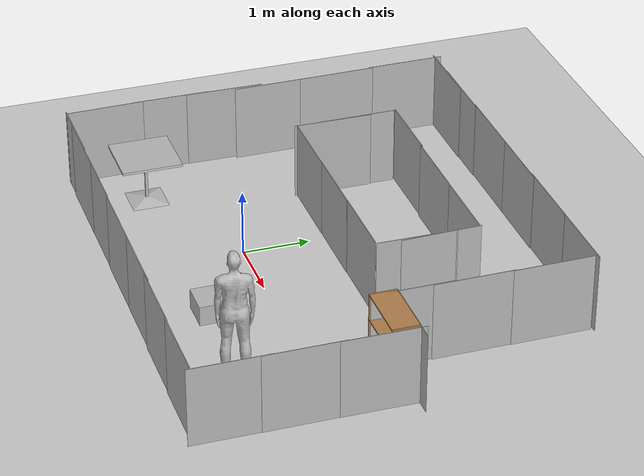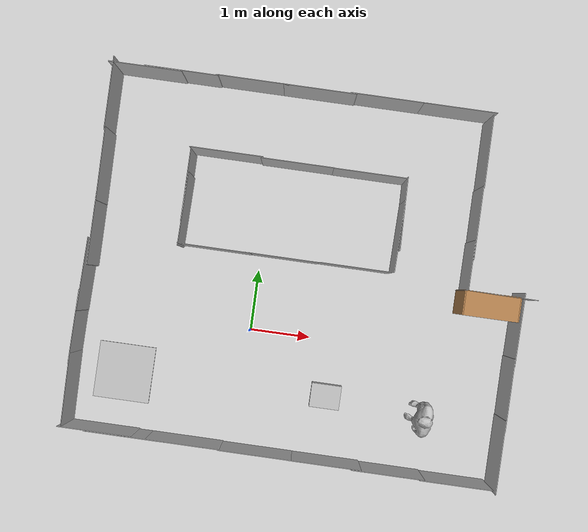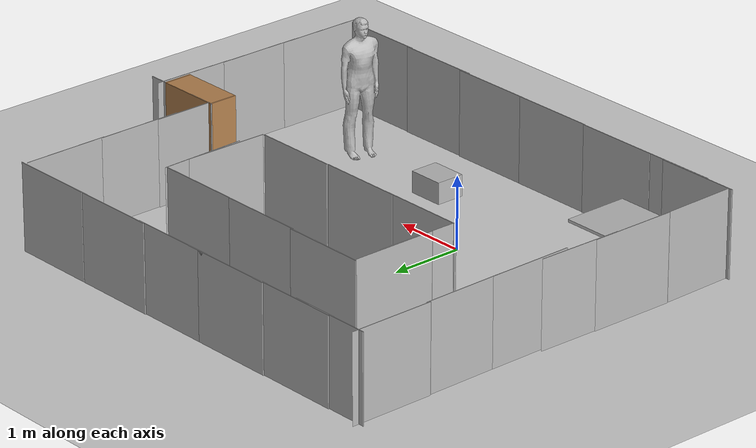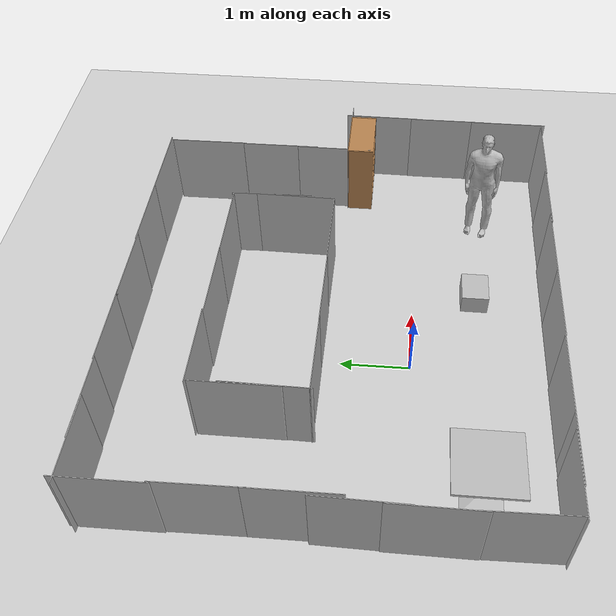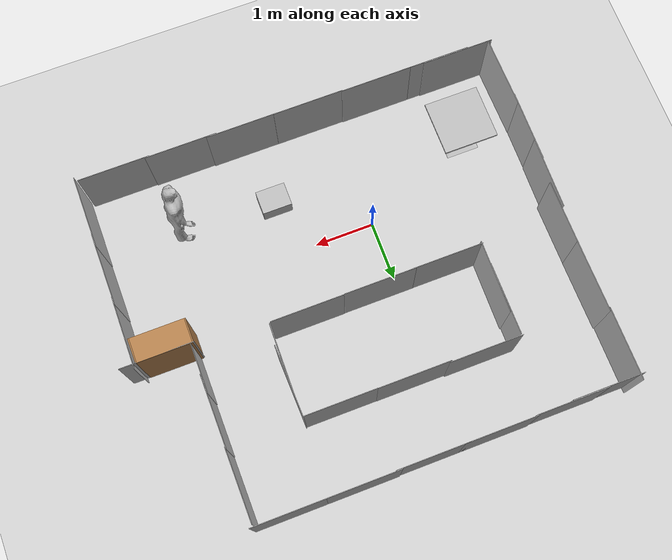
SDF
<sdf version="1.7">
 <world name="default">
  <light name="sun" type="directional">
   <pose>0 0 10 0 -0 0</pose>
   <diffuse>0.8 0.8 0.8 1</diffuse>
   <specular>0.2 0.2 0.2 1</specular>
   <attenuation>
    <range>1000</range>
    <constant>0.9</constant>
    <linear>0.01</linear>
    <quadratic>0.001</quadratic>
   </attenuation>
   <direction>-0.5 0.1 -0.9</direction>
   <spot><inner_angle>0</inner_angle><outer_angle>0</outer_angle><falloff>0</falloff></spot>
  </light>
  <model name="ground_plane">
   <static>1</static>
   <link name="link">
    <collision name="collision">
     <geometry><plane><normal>0 0 1</normal><size>100 100</size></plane></geometry>
     <surface>
      <contact><collide_bitmask>65535</collide_bitmask></contact>
      <friction><ode><mu>100</mu><mu2>50</mu2></ode></friction>
     </surface>
    </collision>
    <visual name="visual">
     <cast_shadows>0</cast_shadows>
     <geometry><plane><normal>0 0 1</normal><size>100 100</size></plane></geometry>
     <material>
      <script><uri>file://media/materials/scripts/gazebo.material</uri><name>Gazebo/Grey</name></script>
     </material>
    </visual>
   </link>
  </model>
  <gravity>0 0 -9.8</gravity>
  <magnetic_field>6e-06 2.3e-05 -4.2e-05</magnetic_field>
  <atmosphere type="adiabatic"/>
  <physics type="ode">
   <max_step_size>0.001</max_step_size>
   <real_time_factor>1</real_time_factor>
   <real_time_update_rate>1000</real_time_update_rate>
  </physics>
  <scene><ambient>0.4 0.4 0.4 1</ambient><background>0.7 0.7 0.7 1</background><shadows>1</shadows></scene>
  <spherical_coordinates>
   <surface_model>EARTH_WGS84</surface_model>
   <latitude_deg>0</latitude_deg>
   <longitude_deg>0</longitude_deg>
   <elevation>0</elevation>
   <heading_deg>0</heading_deg>
  </spherical_coordinates>
  <model name="nist_maze_wall_120">
   <static>1</static>
   <link name="nist_maze_wall_120_link">
    <collision name="collision">
     <geometry>
      <mesh><uri>model://nist_maze_wall_120/meshes/nist_maze_wall_120.dae</uri><scale>1 1 1</scale></mesh>
     </geometry>
    </collision>
    <visual name="visual">
     <geometry>
      <mesh><uri>model://nist_maze_wall_120/meshes/nist_maze_wall_120.dae</uri><scale>1 1 1</scale></mesh>
     </geometry>
    </visual>
   </link>
   <pose>1.57091 0.659399 0 0 -0 0</pose>
  </model>
  <model name="nist_maze_wall_120_clone">
   <static>1</static>
   <link name="nist_maze_wall_120_link">
    <collision name="collision">
     <geometry>
      <mesh><uri>model://nist_maze_wall_120/meshes/nist_maze_wall_120.dae</uri><scale>1 1 1</scale></mesh>
     </geometry>
    </collision>
    <visual name="visual">
     <geometry>
      <mesh><uri>model://nist_maze_wall_120/meshes/nist_maze_wall_120.dae</uri><scale>1 1 1</scale></mesh>
     </geometry>
    </visual>
   </link>
   <pose>0.368968 0.6537 0 0 -0 0</pose>
  </model>
  <model name="nist_maze_wall_120_clone_0">
   <static>1</static>
   <link name="nist_maze_wall_120_link">
    <collision name="collision">
     <geometry>
      <mesh><uri>model://nist_maze_wall_120/meshes/nist_maze_wall_120.dae</uri><scale>1 1 1</scale></mesh>
     </geometry>
    </collision>
    <visual name="visual">
     <geometry>
      <mesh><uri>model://nist_maze_wall_120/meshes/nist_maze_wall_120.dae</uri><scale>1 1 1</scale></mesh>
     </geometry>
    </visual>
   </link>
   <pose>-0.736289 0.650786 0 0 -0 0</pose>
  </model>
  <model name="nist_maze_wall_120_clone_1">
   <static>1</static>
   <link name="nist_maze_wall_120_link">
    <collision name="collision">
     <geometry>
      <mesh><uri>model://nist_maze_wall_120/meshes/nist_maze_wall_120.dae</uri><scale>1 1 1</scale></mesh>
     </geometry>
    </collision>
    <visual name="visual">
     <geometry>
      <mesh><uri>model://nist_maze_wall_120/meshes/nist_maze_wall_120.dae</uri><scale>1 1 1</scale></mesh>
     </geometry>
    </visual>
   </link>
   <pose>-0.748767 2.20811 0 0 -0 0</pose>
  </model>
  <model name="nist_maze_wall_120_clone_2">
   <static>1</static>
   <link name="nist_maze_wall_120_link">
    <collision name="collision">
     <geometry>
      <mesh><uri>model://nist_maze_wall_120/meshes/nist_maze_wall_120.dae</uri><scale>1 1 1</scale></mesh>
     </geometry>
    </collision>
    <visual name="visual">
     <geometry>
      <mesh><uri>model://nist_maze_wall_120/meshes/nist_maze_wall_120.dae</uri><scale>1 1 1</scale></mesh>
     </geometry>
    </visual>
   </link>
   <pose>0.411382 2.18987 0 0 -0 0</pose>
  </model>
  <model name="nist_maze_wall_120_clone_3">
   <static>1</static>
   <link name="nist_maze_wall_120_link">
    <collision name="collision">
     <geometry>
      <mesh><uri>model://nist_maze_wall_120/meshes/nist_maze_wall_120.dae</uri><scale>1 1 1</scale></mesh>
     </geometry>
    </collision>
    <visual name="visual">
     <geometry>
      <mesh><uri>model://nist_maze_wall_120/meshes/nist_maze_wall_120.dae</uri><scale>1 1 1</scale></mesh>
     </geometry>
    </visual>
   </link>
   <pose>1.59556 2.18642 0 0 -0 0</pose>
  </model>
  <model name="nist_maze_wall_120_clone_4">
   <static>1</static>
   <link name="nist_maze_wall_120_link">
    <collision name="collision">
     <geometry>
      <mesh><uri>model://nist_maze_wall_120/meshes/nist_maze_wall_120.dae</uri><scale>1 1 1</scale></mesh>
     </geometry>
    </collision>
    <visual name="visual">
     <geometry>
      <mesh><uri>model://nist_maze_wall_120/meshes/nist_maze_wall_120.dae</uri><scale>1 1 1</scale></mesh>
     </geometry>
    </visual>
   </link>
   <pose>-0.707069 1.80124 0 0 -0 1.55684</pose>
  </model>
  <model name="nist_maze_wall_120_clone_5">
   <static>1</static>
   <link name="nist_maze_wall_120_link">
    <collision name="collision">
     <geometry>
      <mesh><uri>model://nist_maze_wall_120/meshes/nist_maze_wall_120.dae</uri><scale>1 1 1</scale></mesh>
     </geometry>
    </collision>
    <visual name="visual">
     <geometry>
      <mesh><uri>model://nist_maze_wall_120/meshes/nist_maze_wall_120.dae</uri><scale>1 1 1</scale></mesh>
     </geometry>
    </visual>
   </link>
   <pose>-0.716563 2.18729 0 0 -0 1.57112</pose>
  </model>
  <model name="nist_maze_wall_120_clone_6">
   <static>1</static>
   <link name="nist_maze_wall_120_link">
    <collision name="collision">
     <geometry>
      <mesh><uri>model://nist_maze_wall_120/meshes/nist_maze_wall_120.dae</uri><scale>1 1 1</scale></mesh>
     </geometry>
    </collision>
    <visual name="visual">
     <geometry>
      <mesh><uri>model://nist_maze_wall_120/meshes/nist_maze_wall_120.dae</uri><scale>1 1 1</scale></mesh>
     </geometry>
    </visual>
   </link>
   <pose>1.61206 2.19786 0 0 0 -1.54428</pose>
  </model>
  <model name="nist_maze_wall_120_clone_7">
   <static>1</static>
   <link name="nist_maze_wall_120_link">
    <collision name="collision">
     <geometry>
      <mesh><uri>model://nist_maze_wall_120/meshes/nist_maze_wall_120.dae</uri><scale>1 1 1</scale></mesh>
     </geometry>
    </collision>
    <visual name="visual">
     <geometry>
      <mesh><uri>model://nist_maze_wall_120/meshes/nist_maze_wall_120.dae</uri><scale>1 1 1</scale></mesh>
     </geometry>
    </visual>
   </link>
   <pose>1.59694 1.87331 0 0 0 -1.58664</pose>
  </model>
  <model name="nist_maze_wall_120_clone_8">
   <static>1</static>
   <link name="nist_maze_wall_120_link">
    <collision name="collision">
     <geometry>
      <mesh><uri>model://nist_maze_wall_120/meshes/nist_maze_wall_120.dae</uri><scale>1 1 1</scale></mesh>
     </geometry>
    </collision>
    <visual name="visual">
     <geometry>
      <mesh><uri>model://nist_maze_wall_120/meshes/nist_maze_wall_120.dae</uri><scale>1 1 1</scale></mesh>
     </geometry>
    </visual>
   </link>
   <pose>-0.798198 -2.53233 0 0 -0 0</pose>
  </model>
  <model name="nist_maze_wall_120_clone_9">
   <static>1</static>
   <link name="nist_maze_wall_120_link">
    <collision name="collision">
     <geometry>
      <mesh><uri>model://nist_maze_wall_120/meshes/nist_maze_wall_120.dae</uri><scale>1 1 1</scale></mesh>
     </geometry>
    </collision>
    <visual name="visual">
     <geometry>
      <mesh><uri>model://nist_maze_wall_120/meshes/nist_maze_wall_120.dae</uri><scale>1 1 1</scale></mesh>
     </geometry>
    </visual>
   </link>
   <pose>0.376349 -2.54177 0 0 -0 0</pose>
  </model>
  <model name="nist_maze_wall_120_clone_10">
   <static>1</static>
   <link name="nist_maze_wall_120_link">
    <collision name="collision">
     <geometry>
      <mesh><uri>model://nist_maze_wall_120/meshes/nist_maze_wall_120.dae</uri><scale>1 1 1</scale></mesh>
     </geometry>
    </collision>
    <visual name="visual">
     <geometry>
      <mesh><uri>model://nist_maze_wall_120/meshes/nist_maze_wall_120.dae</uri><scale>1 1 1</scale></mesh>
     </geometry>
    </visual>
   </link>
   <pose>1.50652 -2.5442 0 0 -0 0</pose>
  </model>
  <model name="nist_maze_wall_120_clone_11">
   <static>1</static>
   <link name="nist_maze_wall_120_link">
    <collision name="collision">
     <geometry>
      <mesh><uri>model://nist_maze_wall_120/meshes/nist_maze_wall_120.dae</uri><scale>1 1 1</scale></mesh>
     </geometry>
    </collision>
    <visual name="visual">
     <geometry>
      <mesh><uri>model://nist_maze_wall_120/meshes/nist_maze_wall_120.dae</uri><scale>1 1 1</scale></mesh>
     </geometry>
    </visual>
   </link>
   <pose>2.53344 -2.55853 0 0 -0 0</pose>
  </model>
  <model name="nist_maze_wall_120_clone_12">
   <static>1</static>
   <link name="nist_maze_wall_120_link">
    <collision name="collision">
     <geometry>
      <mesh><uri>model://nist_maze_wall_120/meshes/nist_maze_wall_120.dae</uri><scale>1 1 1</scale></mesh>
     </geometry>
    </collision>
    <visual name="visual">
     <geometry>
      <mesh><uri>model://nist_maze_wall_120/meshes/nist_maze_wall_120.dae</uri><scale>1 1 1</scale></mesh>
     </geometry>
    </visual>
   </link>
   <pose>3.64107 -2.56976 0 0 -0 0</pose>
  </model>
  <model name="nist_maze_wall_120_clone_13">
   <static>1</static>
   <link name="nist_maze_wall_120_link">
    <collision name="collision">
     <geometry>
      <mesh><uri>model://nist_maze_wall_120/meshes/nist_maze_wall_120.dae</uri><scale>1 1 1</scale></mesh>
     </geometry>
    </collision>
    <visual name="visual">
     <geometry>
      <mesh><uri>model://nist_maze_wall_120/meshes/nist_maze_wall_120.dae</uri><scale>1 1 1</scale></mesh>
     </geometry>
    </visual>
   </link>
   <pose>2.88461 3.42391 0 0 -0 0</pose>
  </model>
  <model name="nist_maze_wall_120_clone_14">
   <static>1</static>
   <link name="nist_maze_wall_120_link">
    <collision name="collision">
     <geometry>
      <mesh><uri>model://nist_maze_wall_120/meshes/nist_maze_wall_120.dae</uri><scale>1 1 1</scale></mesh>
     </geometry>
    </collision>
    <visual name="visual">
     <geometry>
      <mesh><uri>model://nist_maze_wall_120/meshes/nist_maze_wall_120.dae</uri><scale>1 1 1</scale></mesh>
     </geometry>
    </visual>
   </link>
   <pose>1.69314 3.42391 0 0 -0 0</pose>
  </model>
  <model name="nist_maze_wall_120_clone_15">
   <static>1</static>
   <link name="nist_maze_wall_120_link">
    <collision name="collision">
     <geometry>
      <mesh><uri>model://nist_maze_wall_120/meshes/nist_maze_wall_120.dae</uri><scale>1 1 1</scale></mesh>
     </geometry>
    </collision>
    <visual name="visual">
     <geometry>
      <mesh><uri>model://nist_maze_wall_120/meshes/nist_maze_wall_120.dae</uri><scale>1 1 1</scale></mesh>
     </geometry>
    </visual>
   </link>
   <pose>0.602007 3.41137 0 0 -0 0</pose>
  </model>
  <model name="nist_maze_wall_120_clone_16">
   <static>1</static>
   <link name="nist_maze_wall_120_link">
    <collision name="collision">
     <geometry>
      <mesh><uri>model://nist_maze_wall_120/meshes/nist_maze_wall_120.dae</uri><scale>1 1 1</scale></mesh>
     </geometry>
    </collision>
    <visual name="visual">
     <geometry>
      <mesh><uri>model://nist_maze_wall_120/meshes/nist_maze_wall_120.dae</uri><scale>1 1 1</scale></mesh>
     </geometry>
    </visual>
   </link>
   <pose>-0.489129 3.41137 0 0 -0 0</pose>
  </model>
  <model name="nist_maze_wall_120_clone_17">
   <static>1</static>
   <link name="nist_maze_wall_120_link">
    <collision name="collision">
     <geometry>
      <mesh><uri>model://nist_maze_wall_120/meshes/nist_maze_wall_120.dae</uri><scale>1 1 1</scale></mesh>
     </geometry>
    </collision>
    <visual name="visual">
     <geometry>
      <mesh><uri>model://nist_maze_wall_120/meshes/nist_maze_wall_120.dae</uri><scale>1 1 1</scale></mesh>
     </geometry>
    </visual>
   </link>
   <pose>-1.64297 3.39883 0 0 -0 0</pose>
  </model>
  <model name="nist_maze_wall_120_clone_18">
   <static>1</static>
   <link name="nist_maze_wall_120_link">
    <collision name="collision">
     <geometry>
      <mesh><uri>model://nist_maze_wall_120/meshes/nist_maze_wall_120.dae</uri><scale>1 1 1</scale></mesh>
     </geometry>
    </collision>
    <visual name="visual">
     <geometry>
      <mesh><uri>model://nist_maze_wall_120/meshes/nist_maze_wall_120.dae</uri><scale>1 1 1</scale></mesh>
     </geometry>
    </visual>
   </link>
   <pose>-2.23244 3.38628 0 0 -0 0</pose>
  </model>
  <model name="nist_maze_wall_120_clone_19">
   <static>1</static>
   <link name="nist_maze_wall_120_link">
    <collision name="collision">
     <geometry>
      <mesh><uri>model://nist_maze_wall_120/meshes/nist_maze_wall_120.dae</uri><scale>1 1 1</scale></mesh>
     </geometry>
    </collision>
    <visual name="visual">
     <geometry>
      <mesh><uri>model://nist_maze_wall_120/meshes/nist_maze_wall_120.dae</uri><scale>1 1 1</scale></mesh>
     </geometry>
    </visual>
   </link>
   <pose>-3.34314 3.48047 0 0 0 -1.56583</pose>
  </model>
  <model name="nist_maze_wall_120_clone_20">
   <static>1</static>
   <link name="nist_maze_wall_120_link">
    <collision name="collision">
     <geometry>
      <mesh><uri>model://nist_maze_wall_120/meshes/nist_maze_wall_120.dae</uri><scale>1 1 1</scale></mesh>
     </geometry>
    </collision>
    <visual name="visual">
     <geometry>
      <mesh><uri>model://nist_maze_wall_120/meshes/nist_maze_wall_120.dae</uri><scale>1 1 1</scale></mesh>
     </geometry>
    </visual>
   </link>
   <pose>-3.31694 2.33497 0 0 0 -1.55776</pose>
  </model>
  <model name="nist_maze_wall_120_clone_21">
   <static>1</static>
   <link name="nist_maze_wall_120_link">
    <collision name="collision">
     <geometry>
      <mesh><uri>model://nist_maze_wall_120/meshes/nist_maze_wall_120.dae</uri><scale>1 1 1</scale></mesh>
     </geometry>
    </collision>
    <visual name="visual">
     <geometry>
      <mesh><uri>model://nist_maze_wall_120/meshes/nist_maze_wall_120.dae</uri><scale>1 1 1</scale></mesh>
     </geometry>
    </visual>
   </link>
   <pose>-3.30942 1.29759 0 0 0 -1.56509</pose>
  </model>
  <model name="nist_maze_wall_120_clone_22">
   <static>1</static>
   <link name="nist_maze_wall_120_link">
    <collision name="collision">
     <geometry>
      <mesh><uri>model://nist_maze_wall_120/meshes/nist_maze_wall_120.dae</uri><scale>1 1 1</scale></mesh>
     </geometry>
    </collision>
    <visual name="visual">
     <geometry>
      <mesh><uri>model://nist_maze_wall_120/meshes/nist_maze_wall_120.dae</uri><scale>1 1 1</scale></mesh>
     </geometry>
    </visual>
   </link>
   <pose>-3.35752 0.555252 0 0 0 -1.58769</pose>
  </model>
  <model name="nist_maze_wall_120_clone_23">
   <static>1</static>
   <link name="nist_maze_wall_120_link">
    <collision name="collision">
     <geometry>
      <mesh><uri>model://nist_maze_wall_120/meshes/nist_maze_wall_120.dae</uri><scale>1 1 1</scale></mesh>
     </geometry>
    </collision>
    <visual name="visual">
     <geometry>
      <mesh><uri>model://nist_maze_wall_120/meshes/nist_maze_wall_120.dae</uri><scale>1 1 1</scale></mesh>
     </geometry>
    </visual>
   </link>
   <pose>-3.37648 -0.301306 0 0 0 -1.57766</pose>
  </model>
  <model name="nist_maze_wall_120_clone_24">
   <static>1</static>
   <link name="nist_maze_wall_120_link">
    <collision name="collision">
     <geometry>
      <mesh><uri>model://nist_maze_wall_120/meshes/nist_maze_wall_120.dae</uri><scale>1 1 1</scale></mesh>
     </geometry>
    </collision>
    <visual name="visual">
     <geometry>
      <mesh><uri>model://nist_maze_wall_120/meshes/nist_maze_wall_120.dae</uri><scale>1 1 1</scale></mesh>
     </geometry>
    </visual>
   </link>
   <pose>-3.36564 -1.34227 0 0 0 -1.55156</pose>
  </model>
  <model name="nist_maze_wall_120_clone_25">
   <static>1</static>
   <link name="nist_maze_wall_120_link">
    <collision name="collision">
     <geometry>
      <mesh><uri>model://nist_maze_wall_120/meshes/nist_maze_wall_120.dae</uri><scale>1 1 1</scale></mesh>
     </geometry>
    </collision>
    <visual name="visual">
     <geometry>
      <mesh><uri>model://nist_maze_wall_120/meshes/nist_maze_wall_120.dae</uri><scale>1 1 1</scale></mesh>
     </geometry>
    </visual>
   </link>
   <pose>-1.79348 -2.53344 0 0 -0 0</pose>
  </model>
  <model name="nist_maze_wall_120_clone_26">
   <static>1</static>
   <link name="nist_maze_wall_120_link">
    <collision name="collision">
     <geometry>
      <mesh><uri>model://nist_maze_wall_120/meshes/nist_maze_wall_120.dae</uri><scale>1 1 1</scale></mesh>
     </geometry>
    </collision>
    <visual name="visual">
     <geometry>
      <mesh><uri>model://nist_maze_wall_120/meshes/nist_maze_wall_120.dae</uri><scale>1 1 1</scale></mesh>
     </geometry>
    </visual>
   </link>
   <pose>-2.2199 -2.5209 0 0 -0 0</pose>
  </model>
  <model name="nist_maze_wall_120_clone_27">
   <static>1</static>
   <link name="nist_maze_wall_120_link">
    <collision name="collision">
     <geometry>
      <mesh><uri>model://nist_maze_wall_120/meshes/nist_maze_wall_120.dae</uri><scale>1 1 1</scale></mesh>
     </geometry>
    </collision>
    <visual name="visual">
     <geometry>
      <mesh><uri>model://nist_maze_wall_120/meshes/nist_maze_wall_120.dae</uri><scale>1 1 1</scale></mesh>
     </geometry>
    </visual>
   </link>
   <pose>3.70583 0.634128 0 0 0 -1.58323</pose>
  </model>
  <model name="nist_maze_wall_120_clone_28">
   <static>1</static>
   <link name="nist_maze_wall_120_link">
    <collision name="collision">
     <geometry>
      <mesh><uri>model://nist_maze_wall_120/meshes/nist_maze_wall_120.dae</uri><scale>1 1 1</scale></mesh>
     </geometry>
    </collision>
    <visual name="visual">
     <geometry>
      <mesh><uri>model://nist_maze_wall_120/meshes/nist_maze_wall_120.dae</uri><scale>1 1 1</scale></mesh>
     </geometry>
    </visual>
   </link>
   <pose>3.93837 0.539296 0 0 -0 0</pose>
  </model>
  <model name="nist_maze_wall_120_clone_29">
   <static>1</static>
   <link name="nist_maze_wall_120_link">
    <collision name="collision">
     <geometry>
      <mesh><uri>model://nist_maze_wall_120/meshes/nist_maze_wall_120.dae</uri><scale>1 1 1</scale></mesh>
     </geometry>
    </collision>
    <visual name="visual">
     <geometry>
      <mesh><uri>model://nist_maze_wall_120/meshes/nist_maze_wall_120.dae</uri><scale>1 1 1</scale></mesh>
     </geometry>
    </visual>
   </link>
   <pose>4.00252 1.35402 0 0 -0 1.56755</pose>
  </model>
  <model name="nist_maze_wall_120_clone_30">
   <static>1</static>
   <link name="nist_maze_wall_120_link">
    <collision name="collision">
     <geometry>
      <mesh><uri>model://nist_maze_wall_120/meshes/nist_maze_wall_120.dae</uri><scale>1 1 1</scale></mesh>
     </geometry>
    </collision>
    <visual name="visual">
     <geometry>
      <mesh><uri>model://nist_maze_wall_120/meshes/nist_maze_wall_120.dae</uri><scale>1 1 1</scale></mesh>
     </geometry>
    </visual>
   </link>
   <pose>4.01615 2.23922 0 0 -0 1.57314</pose>
  </model>
  <model name="nist_maze_wall_120_clone_31">
   <static>1</static>
   <link name="nist_maze_wall_120_link">
    <collision name="collision">
     <geometry>
      <mesh><uri>model://nist_maze_wall_120/meshes/nist_maze_wall_120.dae</uri><scale>1 1 1</scale></mesh>
     </geometry>
    </collision>
    <visual name="visual">
     <geometry>
      <mesh><uri>model://nist_maze_wall_120/meshes/nist_maze_wall_120.dae</uri><scale>1 1 1</scale></mesh>
     </geometry>
    </visual>
   </link>
   <pose>4.02271 3.39561 0 0 -0 1.57587</pose>
  </model>
  <model name="nist_maze_wall_120_clone_32">
   <static>1</static>
   <link name="nist_maze_wall_120_link">
    <collision name="collision">
     <geometry>
      <mesh><uri>model://nist_maze_wall_120/meshes/nist_maze_wall_120.dae</uri><scale>1 1 1</scale></mesh>
     </geometry>
    </collision>
    <visual name="visual">
     <geometry>
      <mesh><uri>model://nist_maze_wall_120/meshes/nist_maze_wall_120.dae</uri><scale>1 1 1</scale></mesh>
     </geometry>
    </visual>
   </link>
   <pose>3.69177 -0.438159 0 0 0 -1.57205</pose>
  </model>
  <model name="nist_maze_wall_120_clone_33">
   <static>1</static>
   <link name="nist_maze_wall_120_link">
    <collision name="collision">
     <geometry>
      <mesh><uri>model://nist_maze_wall_120/meshes/nist_maze_wall_120.dae</uri><scale>1 1 1</scale></mesh>
     </geometry>
    </collision>
    <visual name="visual">
     <geometry>
      <mesh><uri>model://nist_maze_wall_120/meshes/nist_maze_wall_120.dae</uri><scale>1 1 1</scale></mesh>
     </geometry>
    </visual>
   </link>
   <pose>3.68282 -1.43541 0 0 0 -1.57541</pose>
  </model>
  <model name="person_standing">
   <link name="link">
    <inertial>
     <pose>0 -0.1 0.95 0 -0 0</pose>
     <mass>80</mass>
     <inertia><ixx>24.88</ixx><ixy>0</ixy><ixz>0</ixz><iyy>25.73</iyy><iyz>0</iyz><izz>2.48</izz></inertia>
    </inertial>
    <collision name="bottom">
     <pose>0 -0.1 0.01 0 -0 0</pose>
     <geometry><box><size>0.5 0.35 0.02</size></box></geometry>
    </collision>
    <collision name="person">
     <pose>0 0 0.02 0.04 -0 0</pose>
     <geometry><mesh><uri>model://person_standing/meshes/standing.dae</uri></mesh></geometry>
    </collision>
    <visual name="visual">
     <pose>0 0 0.02 0.04 -0 0</pose>
     <geometry><mesh><uri>model://person_standing/meshes/standing.dae</uri></mesh></geometry>
    </visual>
   </link>
   <pose>3.03659 -1.01237 -0 -1e-06 1e-06 -1.81463</pose>
  </model>
  <model name="cardboard_box">
   <pose>1.39977 -0.927923 0.149 0 -0 0</pose>
   <link name="link">
    <inertial>
     <mass>2</mass>
     <inertia>
      <ixx>0.0416667</ixx>
      <ixy>0</ixy>
      <ixz>0</ixz>
      <iyy>0.0566667</iyy>
      <iyz>0</iyz>
      <izz>0.0683333</izz>
     </inertia>
    </inertial>
    <collision name="collision">
     <geometry><box><size>0.5 0.4 0.3</size></box></geometry>
     <surface>
      <friction><ode><mu>1</mu><mu2>1</mu2></ode></friction>
      <contact><ode><kp>1e+07</kp><kd>1</kd><min_depth>0.001</min_depth><max_vel>0.1</max_vel></ode></contact>
     </surface>
    </collision>
    <visual name="visual">
     <pose>0 0 -0.15 0 -0 0</pose>
     <geometry>
      <mesh><uri>model://cardboard_box/meshes/cardboard_box.dae</uri><scale>1.25932 1.00745 0.755591</scale></mesh>
     </geometry>
    </visual>
   </link>
  </model>
  <model name="bookshelf">
   <static>1</static>
   <link name="link">
    <inertial><mass>1</mass></inertial>
    <collision name="back">
     <pose>0 0.005 0.6 0 -0 0</pose>
     <geometry><box><size>0.9 0.01 1.2</size></box></geometry>
    </collision>
    <visual name="visual1">
     <pose>0 0.005 0.6 0 -0 0</pose>
     <geometry><box><size>0.9 0.01 1.2</size></box></geometry>
     <material>
      <script><uri>file://media/materials/scripts/gazebo.material</uri><name>Gazebo/Wood</name></script>
     </material>
    </visual>
    <collision name="left_side">
     <pose>0.45 -0.195 0.6 0 -0 0</pose>
     <geometry><box><size>0.02 0.4 1.2</size></box></geometry>
    </collision>
    <visual name="visual2">
     <pose>0.45 -0.195 0.6 0 -0 0</pose>
     <geometry><box><size>0.02 0.4 1.2</size></box></geometry>
     <material>
      <script><uri>file://media/materials/scripts/gazebo.material</uri><name>Gazebo/Wood</name></script>
     </material>
    </visual>
    <collision name="right_side">
     <pose>-0.45 -0.195 0.6 0 -0 0</pose>
     <geometry><box><size>0.02 0.4 1.2</size></box></geometry>
    </collision>
    <visual name="visual3">
     <pose>-0.45 -0.195 0.6 0 -0 0</pose>
     <geometry><box><size>0.02 0.4 1.2</size></box></geometry>
     <material>
      <script><uri>file://media/materials/scripts/gazebo.material</uri><name>Gazebo/Wood</name></script>
     </material>
    </visual>
    <collision name="bottom">
     <pose>0 -0.195 0.03 0 -0 0</pose>
     <geometry><box><size>0.88 0.4 0.06</size></box></geometry>
    </collision>
    <visual name="visual4">
     <pose>0 -0.195 0.03 0 -0 0</pose>
     <geometry><box><size>0.88 0.4 0.06</size></box></geometry>
     <material>
      <script><uri>file://media/materials/scripts/gazebo.material</uri><name>Gazebo/Wood</name></script>
     </material>
    </visual>
    <collision name="top">
     <pose>0 -0.195 1.19 0 -0 0</pose>
     <geometry><box><size>0.88 0.4 0.02</size></box></geometry>
    </collision>
    <visual name="visual5">
     <pose>0 -0.195 1.19 0 -0 0</pose>
     <geometry><box><size>0.88 0.4 0.02</size></box></geometry>
     <material>
      <script><uri>file://media/materials/scripts/gazebo.material</uri><name>Gazebo/Wood</name></script>
     </material>
    </visual>
    <collision name="low_shelf">
     <pose>0 -0.195 0.43 0 -0 0</pose>
     <geometry><box><size>0.88 0.4 0.02</size></box></geometry>
    </collision>
    <visual name="visual6">
     <pose>0 -0.195 0.43 0 -0 0</pose>
     <geometry><box><size>0.88 0.4 0.02</size></box></geometry>
     <material>
      <script><uri>file://media/materials/scripts/gazebo.material</uri><name>Gazebo/Wood</name></script>
     </material>
    </visual>
    <collision name="high_shelf">
     <pose>0 -0.195 0.8 0 -0 0</pose>
     <geometry><box><size>0.88 0.4 0.02</size></box></geometry>
    </collision>
    <visual name="visual7">
     <pose>0 -0.195 0.8 0 -0 0</pose>
     <geometry><box><size>0.88 0.4 0.02</size></box></geometry>
     <material>
      <script><uri>file://media/materials/scripts/gazebo.material</uri><name>Gazebo/Wood</name></script>
     </material>
    </visual>
   </link>
   <pose>3.81084 1.13838 0 0 -0 0</pose>
  </model>
  <model name="cafe_table">
   <static>1</static>
   <link name="link">
    <collision name="surface">
     <pose>0 0 0.755 0 -0 0</pose>
     <geometry><box><size>0.913 0.913 0.04</size></box></geometry>
    </collision>
    <collision name="column">
     <pose>0 0 0.37 0 -0 0</pose>
     <geometry><box><size>0.042 0.042 0.74</size></box></geometry>
    </collision>
    <collision name="base">
     <pose>0 0 0.02 0 -0 0</pose>
     <geometry><box><size>0.56 0.56 0.04</size></box></geometry>
    </collision>
    <visual name="visual">
     <geometry><mesh><uri>model://cafe_table/meshes/cafe_table.dae</uri></mesh></geometry>
    </visual>
   </link>
   <pose>-1.91763 -0.944919 0 0 -0 0</pose>
  </model>
 </world>
</sdf>
